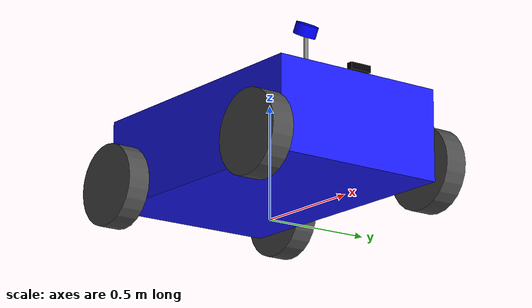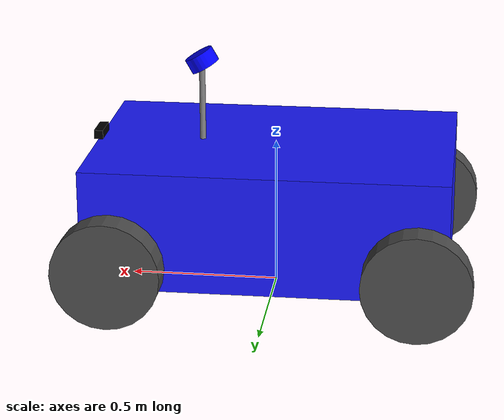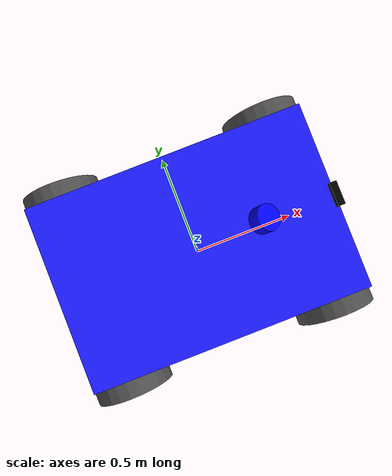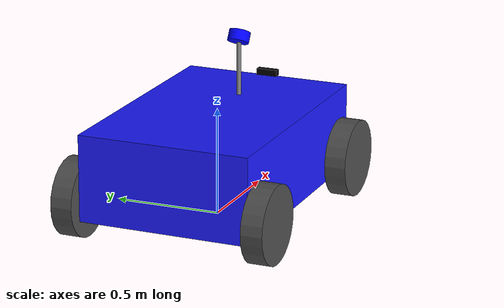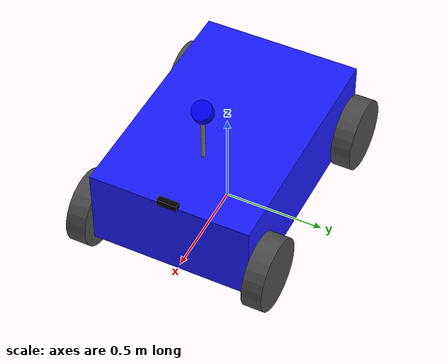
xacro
<robot xmlns:xacro="http://www.ros.org/wiki/xacro" name="aicar">
    <!-- 参数 -->
    <!-- 1.车辆尺寸 -->
    <xacro:property name="car_length" default="1.2" />
    <xacro:property name="car_width" default="0.8" />
    <xacro:property name="car_height" default="0.4" />

    <!-- 2.轮子尺寸 -->
    <xacro:property name="wheel_width" default="0.1" />
    <xacro:property name="wheel_radius" default="0.18" />

    <!-- 新增：前后轮轴心到车体中心的距离 -->
    <xacro:property name="axle_offset" default="0.5" />
    <!-- 修正轴距公式：前轴到后轴的距离 -->
    <xacro:property name="wheel_base" default="${2 * axle_offset}" />

    <!-- 3.离地间隙 -->
    <xacro:property name="clearance" default="0.10" />

    <!-- 4.惯性矩阵宏 (封装好的物理公式) -->
    <!-- Box 的惯性矩阵 -->
    <xacro:macro name="box_inertia" params="m w h d">
        <inertial>
            <mass value="${m}" />
            <inertia
                ixx="${(m/12) * (w*w + h*h)}" ixy="0.0" ixz="0.0"
                iyy="${(m/12) * (d*d + h*h)}" iyz="0.0"
                izz="${(m/12) * (w*w + d*d)}" />
        </inertial>
    </xacro:macro>

    <!-- Cylinder 的惯性矩阵 -->
    <xacro:macro name="cylinder_inertia" params="m r h">
        <inertial>
            <mass value="${m}" />
            <inertia
                ixx="${(m/12) * (3*r*r + h*h)}" ixy="0.0" ixz="0.0"
                iyy="${(m/12) * (3*r*r + h*h)}" iyz="0.0"
                izz="${(m/2) * (r*r)}" />
        </inertial>
    </xacro:macro>

    <!-- 5.虚拟根节点(投影点) -->
    <link name="base_footprint" />

    <!-- 6.车身 Link -->
    <link name="base_link">
        <visual>
            <geometry>
                <box size="${car_length} ${car_width} ${car_height}" />
            </geometry>
            <!-- 材质颜色(可选) -->
            <material name="bule">
                <color rgba="0.1 0.1 1.0 1.0" />
            </material>
        </visual>

        <collision>
            <geometry>
                <box size="${car_length} ${car_width} ${car_height}" />
            </geometry>
        </collision>

        <xacro:box_inertia m="20.0" w="${car_width}" h="${car_height}" d="${car_length}" />
    </link>
    <gazebo reference="base_link">
        <material>Gazebo/Orange</material>
    </gazebo>

    <!-- 舵机驱动 link （虚拟的转向杆） -->
    <link name="steer_link">
        <inertial>
            <mass value="1.0" />
            <inertia ixx="0.01" ixy="0.0" ixz="0.0" iyy="0.01" iyz="0.0" izz="0.01" />
        </inertial>
    </link>
    <joint name="steer_joint" type="fixed">
        <parent link="base_link" />
        <child link="steer_link" />
        <!-- 放在前轴的中心点，用于计算转向几何 -->
        <origin xyz="0.0 0.0 0.0" rpy="0.0 0.0 0.0" />
    </joint>

    <!-- 7.关节:把车身驾在 Footprint 上 -->
    <joint name="base_joint" type="fixed">
        <parent link="base_footprint" />
        <child link="base_link" />
        <!-- Z轴抬高: 轮子半径 + 离地间隙 -->
        <origin xyz="0.0 0.0 ${car_height/2 + clearance}" rpy="0.0 0.0 0.0" />
    </joint>

    <!-- 后轮宏：只有滚动 -->
    <xacro:macro name="rear_wheel" params="prefix x_reflect y_reflect">
        <link name="${prefix}_wheel_link">
            <visual>
                <origin xyz="0.0 0.0 0.0" rpy="${pi/2} 0.0 0.0" />
                <geometry>
                    <cylinder radius="${wheel_radius}" length="${wheel_width}" />
                </geometry>
            </visual>
            <collision>
                <origin xyz="0.0 0.0 0.0" rpy="${pi/2} 0.0 0.0" />
                <geometry>
                    <cylinder radius="${wheel_radius}" length="${wheel_width}" />
                </geometry>
            </collision>
            <xacro:cylinder_inertia m="3.0" r="${wheel_radius}" h="${wheel_width}" />
        </link>

        <joint name="${prefix}_wheel_joint" type="continuous">
            <parent link="base_link" />
            <child link="${prefix}_wheel_link" />
            <origin
                xyz="${x_reflect * (car_length/2 - 0.1)} ${y_reflect * (car_width/2 + wheel_width/2)} ${wheel_radius - (clearance + car_height/2)}"
                rpy="0 0 0" />
            <axis xyz="0 1 0" />
        </joint>
        <gazebo reference="${prefix}_wheel_link">
            <mu1>1.0</mu1>
            <mu2>1.0</mu2>
            <kp>1000000.0</kp>
            <kd>1.0</kd>
        </gazebo>
    </xacro:macro>

    <!-- 前轮宏：可以转向和滚动 -->
    <xacro:macro name="front_wheel" params="prefix x_reflect y_reflect">
        <!-- 转向节link -->
        <link name="${prefix}_steering_hinge">
            <xacro:cylinder_inertia m="0.1" r="0.05" h="0.05" />
        </link>

        <!-- 转向关节：绕Z轴旋转 -->
        <joint name="${prefix}_steering_joint" type="revolute">
            <parent link="base_link" />
            <child link="${prefix}_steering_hinge" />
            <origin
                xyz="${x_reflect * (car_length/2 - 0.1)} ${y_reflect * (car_width/2 + wheel_width/2)} ${wheel_radius - (clearance + car_height/2)}"
                rpy="0.0 0.0 0.0" />
            <axis xyz="0 0 1" />
            <limit lower="-0.5235" upper="0.5235" effort="1000.0" velocity="100.0" />
            <!-- 增加以下这行：damping 是阻尼，friction 是静态摩擦 -->
            <dynamics damping="10.0" friction="1.0" />
        </joint>

        <!-- 轮子link -->
        <link name="${prefix}_wheel_link">
            <visual>
                <origin xyz="0.0 0.0 0.0" rpy="${pi/2} 0.0 0.0" />
                <geometry>
                    <cylinder radius="${wheel_radius}" length="${wheel_width}" />
                </geometry>
            </visual>
            <collision>
                <origin xyz="0.0 0.0 0.0" rpy="${pi/2} 0.0 0.0" />
                <geometry>
                    <cylinder radius="${wheel_radius}" length="${wheel_width}" />
                </geometry>
            </collision>
            <xacro:cylinder_inertia m="3.0" r="${wheel_radius}" h="${wheel_width}" />
        </link>
        <!-- 轮子滚动关节： 绕y轴旋转 -->
        <joint name="${prefix}_wheel_joint" type="continuous">
            <parent link="${prefix}_steering_hinge" />
            <child link="${prefix}_wheel_link" />
            <axis xyz="0 1 0" />
        </joint>
        <gazebo reference="${prefix}_wheel_link">
            <mu1>1.0</mu1>
            <mu2>1.0</mu2>
            <kp>1000000.0</kp>
            <kd>10.0</kd>
        </gazebo>
    </xacro:macro>

    <!-- 9.调用宏生成4个轮子 -->
    <xacro:front_wheel prefix="front_left" x_reflect="1" y_reflect="1" />
    <xacro:front_wheel prefix="front_right" x_reflect="1" y_reflect="-1" />
    <xacro:rear_wheel prefix="rear_left" x_reflect="-1" y_reflect="1" />
    <xacro:rear_wheel prefix="rear_right" x_reflect="-1" y_reflect="-1" />
      <!-- 轮子颜色 -->
    <gazebo reference="front_left_wheel_link">
        <material>Gazebo/DarkGrey</material>
    </gazebo>
    <gazebo reference="front_right_wheel_link">
        <material>Gazebo/DarkGrey</material>
    </gazebo>
    <gazebo reference="rear_left_wheel_link">
        <material>Gazebo/DarkGrey</material>
    </gazebo>
    <gazebo reference="rear_right_wheel_link">
        <material>Gazebo/DarkGrey</material>
    </gazebo>

    <!-- 10. Gazebo阿克曼驱动插件 -->
    <gazebo>
        <plugin name="ackermann_drive" filename="libgazebo_ros_ackermann_drive.so">
            <ros>
                <!-- 推荐在ROS 2 Humble中使用精确的话题重映射 -->
                <remapping>cmd_vel:=/cmd_vel</remapping>
                <remapping>odom:=/odom</remapping>
            </ros>

            <update_rate>100.0</update_rate>

            <!-- 关节名称 -->
            <!-- 转向关节 -->
            <left_steering_joint>front_left_steering_joint</left_steering_joint>
            <right_steering_joint>front_right_steering_joint</right_steering_joint>

            <!-- 驱动关节: 这里我们将驱动也放在前轮上，阿克曼模型通常是前轮转向、后轮驱动或四轮驱动 -->
            <!-- 如果您希望是后轮驱动，请确保模型物理属性和PID参数适应这种情况 -->
            <front_left_joint>front_left_wheel_joint</front_left_joint>
            <front_right_joint>front_right_wheel_joint</front_right_joint>
            <rear_left_joint>rear_left_wheel_joint</rear_left_joint>
            <rear_right_joint>rear_right_wheel_joint</rear_right_joint>
            <!-- 几何参数 -->
            <wheel_separation>${car_width + wheel_width}</wheel_separation>
            <wheel_diameter>${2 * wheel_radius}</wheel_diameter>
            <!-- 轴距的计算是前后轮转向轴中心的距离，您的计算是正确的 -->
            <wheel_base>${2 * (car_length/2 - 0.1)}</wheel_base>

            <!-- 限制参数 -->
            <max_steer>0.5235</max_steer>
            <max_speed>20.0</max_speed>

            <!-- PID增益 -->
            <left_steering_pid_gain>4000 0.5 50</left_steering_pid_gain>
            <right_steering_pid_gain>4000 0.5 50</right_steering_pid_gain>
            <!-- 驱动 PID： 后驱重点给这两个 -->
            <linear_velocity_pid_gain>50 0 0</linear_velocity_pid_gain>
            <!-- 输出 -->
            <publish_odom>true</publish_odom>
            <publish_odom_tf>true</publish_odom_tf>
            <publish_wheel_tf>true</publish_wheel_tf>
            <publish_distance>true</publish_distance>

            <odometry_frame>odom</odometry_frame>
            <robot_base_frame>base_footprint</robot_base_frame>
        </plugin>
    </gazebo>

    <!-- 感知硬件 -->
    <!-- LiDAR -->
    <link name="laser_link">
        <visual>
            <origin xyz="0.0 0.0 0.0" rpy="0.0 0.0 0.0" />
            <geometry>
                <cylinder radius="0.05" length="0.05" />
            </geometry>
            <material name="blue">
                <color rgba="0.0 0.0 1.0 1.0" />
            </material>
        </visual>
        <collision>
            <geometry>
                <cylinder radius="0.05" length="0.05" />
            </geometry>
        </collision>
        <xacro:cylinder_inertia m="0.1" r="0.05" h="0.05" />
    </link>

    <!-- GazeboLiDAR插件 -->
    <gazebo reference="laser_link">
        <sensor name="rplidar" type="ray">
            <always_on>true</always_on>
            <visualize>false</visualize>
            <update_rate>10.0</update_rate>
            <ray>
                <scan>
                    <horizontal>
                        <samples>240</samples>
                        <resolution>1</resolution>
                        <min_angle>-3.1415926</min_angle>
                        <max_angle>3.1415926</max_angle>
                    </horizontal>
                    <vertical>
                        <samples>24</samples>
                        <resolution>1</resolution>
                        <min_angle>0.0</min_angle>
                        <max_angle>1.5708</max_angle>
                    </vertical>
                </scan>
                <range>
                    <min>0.1</min>
                    <max>60.0</max>
                    <resolution>0.01</resolution>
                </range>
                <noise>
                    <type>gaussian</type>
                    <mean>0.0</mean>
                    <stddev>0.01</stddev>
                </noise>
            </ray>
            <plugin name="gazebo_ros_velodyne_laser" filename="libgazebo_ros_velodyne_laser.so">
                <ros>
                    <remapping>~/out:=points_raw</remapping>
                </ros>
                <frameName>laser_link</frameName>
                <organize_cloud>true</organize_cloud>
                <min_range>0.1</min_range>
                <max_range>60.0</max_range>
                <gaussianNoise>0.01</gaussianNoise>
                <useSystemTime>false</useSystemTime>
            </plugin>
        </sensor>
    </gazebo>

    <!-- 雷达增高架 -->
    <!-- 参数 -->
    <xacro:property name="support_radius" default="0.01" />
    <xacro:property name="support_length" default="0.25" />
    <xacro:property name="support_x_offset" default="${car_length/2 - 0.35}" />
    <link name="laser_support_link">
        <visual>
            <geometry>
                <cylinder radius="${support_radius}" length="${support_length}" />
            </geometry>
            <material name="gray">
                <color rgba="0.5 0.5 0.5 1.0" />
            </material>
        </visual>
        <collision>
            <geometry>
                <cylinder radius="${support_radius}" length="${support_length}" />
            </geometry>
        </collision>
        <xacro:cylinder_inertia m="0.2" r="0.01" h="0.25" />
    </link>
    <joint name="support_joint" type="fixed">
        <parent link="base_link" />
        <child link="laser_support_link" />
        <origin xyz="${support_x_offset} 0 ${car_height/2 + support_length/2}" rpy="0.0 0.0 0.0" />
    </joint>
    <joint name="laser_joint" type="fixed">
        <parent link="laser_support_link" />
        <child link="laser_link" />
        <origin xyz="0.0 0.0 ${support_length/2 + 0.025}" rpy="0.0 0.5236 0.0"/>
    </joint>

    <!-- IMU -->
    <link name="imu_link">
        <visual>
            <geometry>
                <box size="0.02 0.02 0.01" />
            </geometry>
            <material name="orange">
                <color rgba="1.0 0.5 0.0 1.0" />
            </material>
        </visual>
        <xacro:box_inertia m="0.01" w="0.02" h="0.02" d="0.01" />
    </link>
    <joint name="imu_joint" type="fixed">
        <parent link="base_link" />
        <child link="imu_link" />
        <origin xyz="0.0 0.0 0.0" rpy="0.0 0.0 0.0" />
    </joint>
    <!-- Gazebo IMU 插件-->
    <gazebo reference="imu_link">
        <sensor name="imu_sensor" type="imu">
            <always_on>true</always_on>
            <update_rate>100.0</update_rate>
            <imu>
                <!-- 角速度噪音 -->
                <angular_velocity>
                    <x>
                        <noise type="gaussian">
                            <mean>0.0</mean>  <!-- 噪声均值 -->
                            <stddev>2e-4</stddev> <!-- 标准差：0.0002 rad/s-->
                        </noise>
                    </x>
                    <y>
                        <noise type="gaussian">
                            <mean>0.0</mean>  <!-- 噪声均值 -->
                            <stddev>2e-4</stddev> <!-- 标准差：0.0002 rad/s-->
                        </noise>
                    </y>
                    <z>
                        <noise type="gaussian">
                            <mean>0.0</mean>  <!-- 噪声均值 -->
                            <stddev>2e-4</stddev> <!-- 标准差：0.0002 rad/s-->
                        </noise>
                    </z>
                </angular_velocity>
                <!-- 线速度噪音（单位：m/s^2） -->
                <linear_acceleration>
                    <x>
                        <noise type="gaussian">
                            <mean>0.0</mean>  <!-- 噪声均值 -->
                            <stddev>1.7e-4</stddev> <!-- 标准差：0.017 m/s^2-->
                        </noise>
                    </x>
                    <y>
                        <noise type="gaussian">
                            <mean>0.0</mean>  <!-- 噪声均值 -->
                            <stddev>1.7e-4</stddev> <!-- 标准差：0.017 m/s^2-->
                        </noise>
                    </y>
                    <z>
                        <noise type="gaussian">
                            <mean>0.0</mean>  <!-- 噪声均值 -->
                            <stddev>1.7e-4</stddev> <!-- 标准差：0.017 m/s^2-->
                        </noise>
                    </z>
                </linear_acceleration>
            </imu>
            <plugin name="imu_plugin" filename="libgazebo_ros_imu_sensor.so">
                <ros>
                    <remapping>~/out:=imu/data</remapping>
                </ros>
                <frame_name>imu_link</frame_name>
                <!-- 初始姿态偏置，通常设为全0 -->
                <initial_orientation_as_reference>false</initial_orientation_as_reference>
            </plugin>
        </sensor>
    </gazebo>

    <!-- RGB-D 相机组件 -->
    <!-- 相机尺寸参数（参考Realsense D435） -->
    <xacro:property name="camera_length" default="0.03" /> <!-- X方向深度 -->
    <xacro:property name="camera_width" default="0.10" />  <!-- Y方向深度 -->
    <xacro:property name="camera_height" default="0.03" />  <!-- Z方向深度 -->

    <!-- 相机物理外壳 -->
    <link name="camera_link">
        <visual>
            <geometry>
                <box size="${camera_length} ${camera_width} ${camera_height}" />
            </geometry>
            <material name="black">
                <color rgba="0.0 0.0 0.0 1.0" />
            </material>
        </visual>
        <collision>
            <geometry>
                <box size="${camera_length} ${camera_width} ${camera_height}" />
            </geometry>
        </collision>
        <xacro:box_inertia m="0.1" w="${camera_width}" h="${camera_height}" d="${camera_length}" />
    </link>

    <!-- 相机安装到车上 -->
    <joint name="camera_joint" type="fixed">
        <parent link="base_link" />
        <child link="camera_link" />
        <!-- 安装位置：车头最前端 -->
        <origin xyz="${car_length/2} 0.0 ${car_height/2 + camera_height/2}" />
    </joint>

    <!-- 光学坐标系转换（解决点云歪斜问题） -->
    <!-- 虚拟link,提负责提供坐标定义 -->
    <link name="camera_optical_frame" />
    <joint name="camera_optical_joint" type="fixed">
        <parent link="camera_link" />
        <child link="camera_optical_frame" />
        <!--
                旋转逻辑：
                RGB-D 坐标系 Z前 X右 Y下， 对齐   旋转顺序是ZYX
                1. 绕Z轴旋转-90度（-pi/2）： 此时： Y前 X右 Z上
                2. 绕X轴旋转-90度（-pi/2）： 此时： Z前 X右 Y下
            -->
        <origin xyz="0.0 0.0 0.0" rpy="${-pi/2} 0.0 ${-pi/2}"/>
    </joint>
    <gazebo reference="camera_link">
        <!-- sensor 类型必须是 depth -->
        <sensor name="camera_sensor" type="depth">
            <always_on>true</always_on>
            <update_rate>30.0</update_rate>

            <camera>
                <horizontal_fov>1.50098</horizontal_fov> <!-- 水平视角，越86度 -->
                <image>
                    <width>640</width>
                    <height>480</height>
                    <format>R8G8B8</format>
                </image>
                <clip>
                    <near>0.1</near> <!-- 最近看10厘米 -->
                    <far>10.0</far> <!-- 最远看100米 -->
                </clip>
            </camera>

            <plugin name="camera_plugin" filename="libgazebo_ros_camera.so">
                <ros>
                    <!-- 将默认话题名重映射成更规范的名称 -->
                    <remapping>custom_camera/image_raw:=camera/color/image_raw</remapping>
                    <remapping>custom_camera/image_depth:=camera/depth/image_raw</remapping>
                    <remapping>custom_camera/camera_info:=camera/camera_info</remapping>
                    <remapping>custom_camera/points:=camera/depth/points</remapping>
                </ros>

                <!-- 关键：必须绑定到刚才旋转后的坐标系 -->
                <frame_name>camera_optical_frame</frame_name>

                <!-- 深度数据相关参数 -->
                <min_depth>0.1</min_depth>
                <max_depth>10.0</max_depth>
            </plugin>
        </sensor>

    </gazebo>
</robot>
